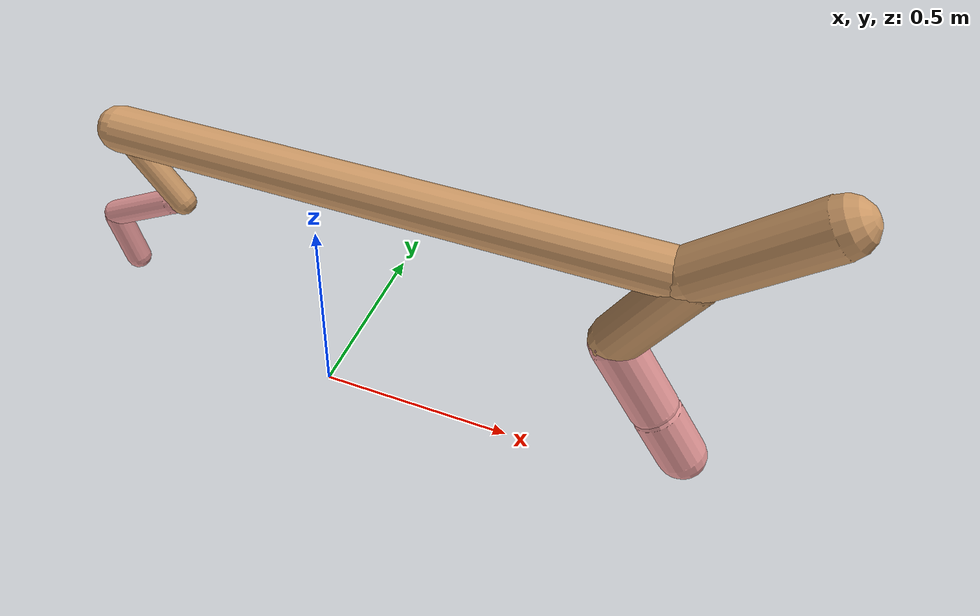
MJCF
<mujoco model="cheetah">
  <compiler angle="radian" coordinate="local" inertiafromgeom="true" settotalmass="14" />
  <default>
    <joint armature=".1" damping=".01" limited="true" solimplimit="0 .8 .03" solreflimit=".02 1" stiffness="8" />
    <geom conaffinity="0" condim="3" contype="1" friction="0.8 .1 .1" rgba="0.8 0.6 .4 1" solimp="0.0 0.8 0.01" solref="0.02 1" />
    <motor ctrllimited="true" ctrlrange="-1 1" />
  </default>
  <size nstack="300000" nuser_geom="1" />
  <option gravity="0 0 -9.81" timestep="0.01" />
  <worldbody>
    <body name="torso" pos="0.0 0.0 0.6628471473493849">
      <joint armature="0" axis="1 0 0" damping="0" limited="false" name="ignorex" pos="0 0 0" stiffness="0" type="slide" />
      <joint armature="0" axis="0 0 1" damping="0" limited="false" name="ignorez" pos="0 0 0" stiffness="0" type="slide" />
      <joint armature="0" axis="0 1 0" damping="0" limited="false" name="ignorey" pos="0 0 0" stiffness="0" type="hinge" />
      <geom fromto="-0.5 0.0 0.0 0.8514543828111603 0.0 0.0" name="torso" size="0.055754780267560755" type="capsule" />
      <geom axisangle="0 1 0 .87" name="head" pos="0.9514543828111602 0.0 0.1" size="0.062427368335448895 0.15" type="capsule" />

      <body name="bthigh" pos="-.5 0 0">
        <joint axis="0 1 0" damping="6" name="bthigh" pos="0 0 0" range="-.52 1.05" stiffness="240" type="hinge" />
        <geom axisangle="0 1 0 -3.8" name="bthigh" pos="0.0734775819030384 0.0 -0.0955208564739499" size="0.0322 0.10149999999999999" type="capsule" />
        <body name="bshin" pos="0.10695516380607678 0.0 -0.18104171294789978">
          <joint axis="0 1 0" damping="4.5" name="bshin" pos="0 0 0" range="-.785 .785" stiffness="180" type="hinge" />
          <geom axisangle="0 1 0 -2.03" name="bshin" pos="-0.0997507764050038 0.0 -0.0498753882025019" rgba="0.9 0.6 0.6 1" size="0.0322 0.105" type="capsule" />
          <body name="bfoot" pos="-0.1995015528100076 0.0 -0.0997507764050038">
            <joint axis="0 1 0" damping="3" name="bfoot" pos="0 0 0" range="-.4 .785" stiffness="120" type="hinge" />
            <geom axisangle="0 1 0 -.27" name="bfoot" pos="0.021667753813597694 0.0 -0.07005907066396588" rgba="0.9 0.6 0.6 1" size="0.0322 0.0658" type="capsule" />
            <inertial mass="10" />
          </body>
        </body>
      </body>
      <body name="fthigh" pos="0.8514543828111603 0.0 0.0">
        <joint axis="0 1 0" damping="4.5" name="fthigh" pos="0 0 0" range="-1.5 0.8" stiffness="180" type="hinge" />
        <geom axisangle="0 1 0 .52" name="fthigh" pos="-0.0673956143164163 0.0 -0.11553533882814222" size="0.05915978495277682 0.12783124539484123" type="capsule" />
        <body name="fshin" pos="-0.1347912286328326 0.0 -0.23107067765628445">
          <joint axis="0 1 0" damping="3" name="fshin" pos="0 0 0" range="-1.2 1.1" stiffness="120" type="hinge" />
          <geom axisangle="0 1 0 -.6" name="fshin" pos="0.06258809592763338 0.0 -0.08666044051518468" rgba="0.9 0.6 0.6 1" size="0.05915978495277682 0.10188054144250502" type="capsule" />
          <body name="ffoot" pos="0.12517619185526677 0.0 -0.17332088103036936">
            <joint axis="0 1 0" damping="1.5" name="ffoot" pos="0 0 0" range="-3.1 -0.3" stiffness="60" type="hinge" />
            <geom axisangle="0 1 0 -.6" name="ffoot" pos="0.043528924584012516 0.0 -0.06771166046401947" rgba="0.9 0.6 0.6 1" size="0.05915978495277682 0.06727960283939012" type="capsule" />
            <inertial mass="10" />
          </body>
        </body>
      </body>
    </body>
  </worldbody>
  <actuator>
    <motor gear="120" joint="bthigh" name="bthigh" />
    <motor gear="90" joint="bshin" name="bshin" />
    <motor gear="60" joint="bfoot" name="bfoot" />
    <motor gear="120" joint="fthigh" name="fthigh" />
    <motor gear="60" joint="fshin" name="fshin" />
    <motor gear="30" joint="ffoot" name="ffoot" />
  </actuator>
</mujoco>
